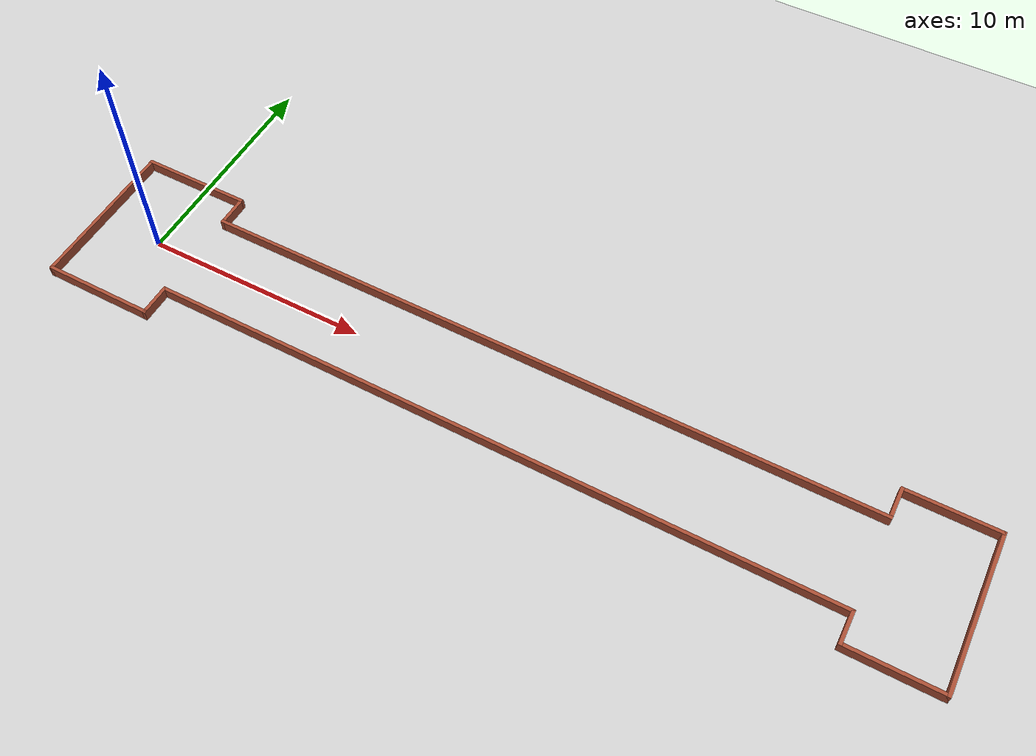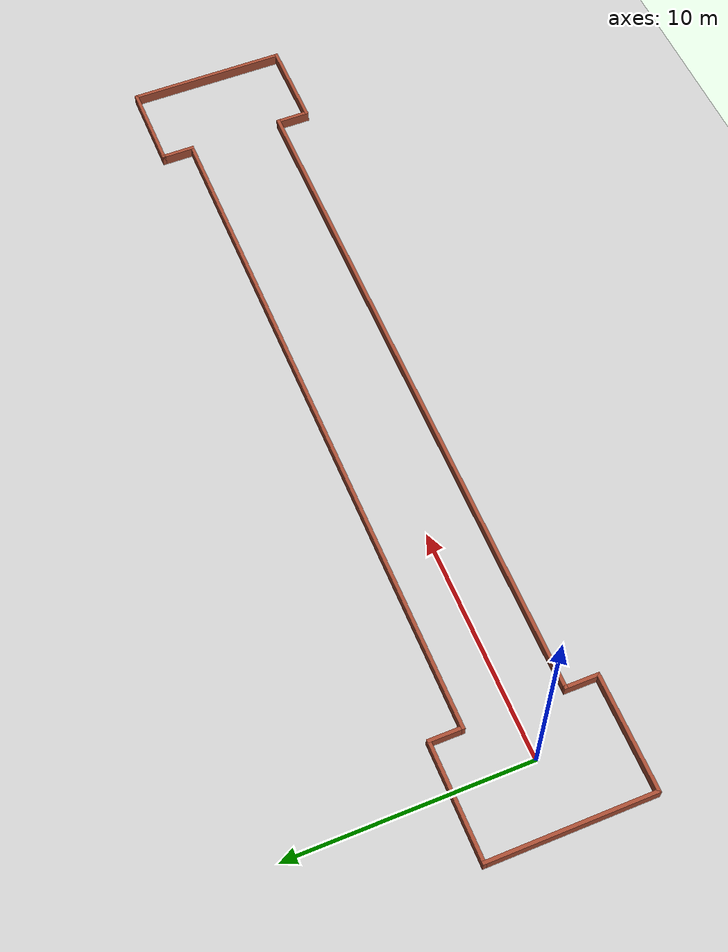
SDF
<sdf version="1.7">
 <world name="default">
  <light name="sun" type="directional">
   <pose>0 0 10 0 -0 0</pose>
   <diffuse>0.8 0.8 0.8 1</diffuse>
   <specular>0.2 0.2 0.2 1</specular>
   <attenuation>
    <range>1000</range>
    <constant>0.9</constant>
    <linear>0.01</linear>
    <quadratic>0.001</quadratic>
   </attenuation>
   <direction>-0.5 0.1 -0.9</direction>
   <spot><inner_angle>0</inner_angle><outer_angle>0</outer_angle><falloff>0</falloff></spot>
  </light>
  <model name="ground_plane">
   <static>1</static>
   <link name="link">
    <collision name="collision">
     <geometry><plane><normal>0 0 1</normal><size>100 100</size></plane></geometry>
     <surface>
      <contact><collide_bitmask>65535</collide_bitmask></contact>
      <friction><ode><mu>100</mu><mu2>50</mu2></ode></friction>
     </surface>
    </collision>
    <visual name="visual">
     <cast_shadows>0</cast_shadows>
     <geometry><plane><normal>0 0 1</normal><size>100 100</size></plane></geometry>
     <material>
      <script><uri>file://media/materials/scripts/gazebo.material</uri><name>Gazebo/Grey</name></script>
     </material>
    </visual>
   </link>
  </model>
  <gravity>0 0 -9.8</gravity>
  <magnetic_field>6e-06 2.3e-05 -4.2e-05</magnetic_field>
  <atmosphere type="adiabatic"/>
  <physics type="ode">
   <max_step_size>0.001</max_step_size>
   <real_time_factor>1</real_time_factor>
   <real_time_update_rate>1000</real_time_update_rate>
  </physics>
  <scene><ambient>0.4 0.4 0.4 1</ambient><background>0.7 0.7 0.7 1</background><shadows>1</shadows></scene>
  <spherical_coordinates>
   <surface_model>EARTH_WGS84</surface_model>
   <latitude_deg>0</latitude_deg>
   <longitude_deg>0</longitude_deg>
   <elevation>0</elevation>
   <heading_deg>0</heading_deg>
  </spherical_coordinates>
  <model name="corridor">
   <pose>16.4263 -0.024 0 0 -0 0</pose>
   <link name="Wall_12">
    <collision name="Wall_12_Collision">
     <geometry><box><size>7 0.15 0.5</size></box></geometry>
     <pose>0 0 0.25 0 -0 0</pose>
    </collision>
    <visual name="Wall_12_Visual">
     <pose>0 0 0.25 0 -0 0</pose>
     <geometry><box><size>7 0.15 0.5</size></box></geometry>
     <material>
      <script><uri>file://media/materials/scripts/gazebo.material</uri><name>Gazebo/Bricks</name></script>
      <ambient>1 1 1 1</ambient>
     </material>
     <meta><layer>0</layer></meta>
    </visual>
    <pose>-19.275 -0 0 0 -0 -1.5708</pose>
   </link>
   <link name="Wall_14">
    <collision name="Wall_14_Collision">
     <geometry><box><size>5 0.15 0.5</size></box></geometry>
     <pose>0 0 0.25 0 -0 0</pose>
    </collision>
    <visual name="Wall_14_Visual">
     <pose>0 0 0.25 0 -0 0</pose>
     <geometry><box><size>5 0.15 0.5</size></box></geometry>
     <material>
      <script><uri>file://media/materials/scripts/gazebo.material</uri><name>Gazebo/Bricks</name></script>
      <ambient>1 1 1 1</ambient>
     </material>
     <meta><layer>0</layer></meta>
    </visual>
    <pose>-16.85 -3.425 0 0 -0 0</pose>
   </link>
   <link name="Wall_15">
    <collision name="Wall_15_Collision">
     <geometry><box><size>1.5 0.15 0.5</size></box></geometry>
     <pose>0 0 0.25 0 -0 0</pose>
    </collision>
    <visual name="Wall_15_Visual">
     <pose>0 0 0.25 0 -0 0</pose>
     <geometry><box><size>1.5 0.15 0.5</size></box></geometry>
     <material>
      <script><uri>file://media/materials/scripts/gazebo.material</uri><name>Gazebo/Bricks</name></script>
      <ambient>1 1 1 1</ambient>
     </material>
     <meta><layer>0</layer></meta>
    </visual>
    <pose>-14.425 -2.75 0 0 -0 1.5708</pose>
   </link>
   <link name="Wall_16">
    <collision name="Wall_16_Collision">
     <geometry><box><size>30 0.15 0.5</size></box></geometry>
     <pose>0 0 0.25 0 -0 0</pose>
    </collision>
    <visual name="Wall_16_Visual">
     <pose>0 0 0.25 0 -0 0</pose>
     <geometry><box><size>30 0.15 0.5</size></box></geometry>
     <material>
      <script><uri>file://media/materials/scripts/gazebo.material</uri><name>Gazebo/Bricks</name></script>
      <ambient>1 1 1 1</ambient>
     </material>
     <meta><layer>0</layer></meta>
    </visual>
    <pose>0.5 -2.075 0 0 -0 0</pose>
   </link>
   <link name="Wall_17">
    <collision name="Wall_17_Collision">
     <geometry><box><size>1.5 0.15 0.5</size></box></geometry>
     <pose>0 0 0.25 0 -0 0</pose>
    </collision>
    <visual name="Wall_17_Visual">
     <pose>0 0 0.25 0 -0 0</pose>
     <geometry><box><size>1.5 0.15 0.5</size></box></geometry>
     <material>
      <script><uri>file://media/materials/scripts/gazebo.material</uri><name>Gazebo/Bricks</name></script>
      <ambient>1 1 1 1</ambient>
     </material>
     <meta><layer>0</layer></meta>
    </visual>
    <pose>15.425 -2.75 0 0 -0 -1.5708</pose>
   </link>
   <link name="Wall_18">
    <collision name="Wall_18_Collision">
     <geometry><box><size>4 0.15 0.5</size></box></geometry>
     <pose>0 0 0.25 0 -0 0</pose>
    </collision>
    <visual name="Wall_18_Visual">
     <pose>0 0 0.25 0 -0 0</pose>
     <geometry><box><size>4 0.15 0.5</size></box></geometry>
     <material>
      <script><uri>file://media/materials/scripts/gazebo.material</uri><name>Gazebo/Bricks</name></script>
      <ambient>1 1 1 1</ambient>
     </material>
     <meta><layer>0</layer></meta>
    </visual>
    <pose>17.35 -3.425 0 0 -0 0</pose>
   </link>
   <link name="Wall_19">
    <collision name="Wall_19_Collision">
     <geometry><box><size>7 0.15 0.5</size></box></geometry>
     <pose>0 0 0.25 0 -0 0</pose>
    </collision>
    <visual name="Wall_19_Visual">
     <pose>0 0 0.25 0 -0 0</pose>
     <geometry><box><size>7 0.15 0.5</size></box></geometry>
     <material>
      <script><uri>file://media/materials/scripts/gazebo.material</uri><name>Gazebo/Bricks</name></script>
      <ambient>1 1 1 1</ambient>
     </material>
     <meta><layer>0</layer></meta>
    </visual>
    <pose>19.275 -0 0 0 -0 1.5708</pose>
   </link>
   <link name="Wall_20">
    <collision name="Wall_20_Collision">
     <geometry><box><size>4 0.15 0.5</size></box></geometry>
     <pose>0 0 0.25 0 -0 0</pose>
    </collision>
    <visual name="Wall_20_Visual">
     <pose>0 0 0.25 0 -0 0</pose>
     <geometry><box><size>4 0.15 0.5</size></box></geometry>
     <material>
      <script><uri>file://media/materials/scripts/gazebo.material</uri><name>Gazebo/Bricks</name></script>
      <ambient>1 1 1 1</ambient>
     </material>
     <meta><layer>0</layer></meta>
    </visual>
    <pose>17.35 3.425 0 0 -0 3.14159</pose>
   </link>
   <link name="Wall_21">
    <collision name="Wall_21_Collision">
     <geometry><box><size>1.5 0.15 0.5</size></box></geometry>
     <pose>0 0 0.25 0 -0 0</pose>
    </collision>
    <visual name="Wall_21_Visual">
     <pose>0 0 0.25 0 -0 0</pose>
     <geometry><box><size>1.5 0.15 0.5</size></box></geometry>
     <material>
      <script><uri>file://media/materials/scripts/gazebo.material</uri><name>Gazebo/Bricks</name></script>
      <ambient>1 1 1 1</ambient>
     </material>
     <meta><layer>0</layer></meta>
    </visual>
    <pose>15.425 2.75 0 0 -0 -1.5708</pose>
   </link>
   <link name="Wall_22">
    <collision name="Wall_22_Collision">
     <geometry><box><size>30 0.15 0.5</size></box></geometry>
     <pose>0 0 0.25 0 -0 0</pose>
    </collision>
    <visual name="Wall_22_Visual">
     <pose>0 0 0.25 0 -0 0</pose>
     <geometry><box><size>30 0.15 0.5</size></box></geometry>
     <material>
      <script><uri>file://media/materials/scripts/gazebo.material</uri><name>Gazebo/Bricks</name></script>
      <ambient>1 1 1 1</ambient>
     </material>
     <meta><layer>0</layer></meta>
    </visual>
    <pose>0.5 2.075 0 0 -0 3.14159</pose>
   </link>
   <link name="Wall_23">
    <collision name="Wall_23_Collision">
     <geometry><box><size>1.5 0.15 0.5</size></box></geometry>
     <pose>0 0 0.25 0 -0 0</pose>
    </collision>
    <visual name="Wall_23_Visual">
     <pose>0 0 0.25 0 -0 0</pose>
     <geometry><box><size>1.5 0.15 0.5</size></box></geometry>
     <material>
      <script><uri>file://media/materials/scripts/gazebo.material</uri><name>Gazebo/Bricks</name></script>
      <ambient>1 1 1 1</ambient>
     </material>
     <meta><layer>0</layer></meta>
    </visual>
    <pose>-14.425 2.75 0 0 -0 1.5708</pose>
   </link>
   <link name="Wall_24">
    <collision name="Wall_24_Collision">
     <geometry><box><size>5 0.15 0.5</size></box></geometry>
     <pose>0 0 0.25 0 -0 0</pose>
    </collision>
    <visual name="Wall_24_Visual">
     <pose>0 0 0.25 0 -0 0</pose>
     <geometry><box><size>5 0.15 0.5</size></box></geometry>
     <material>
      <script><uri>file://media/materials/scripts/gazebo.material</uri><name>Gazebo/Bricks</name></script>
      <ambient>1 1 1 1</ambient>
     </material>
     <meta><layer>0</layer></meta>
    </visual>
    <pose>-16.85 3.425 0 0 -0 3.14159</pose>
   </link>
   <static>1</static>
  </model>
 </world>
</sdf>
